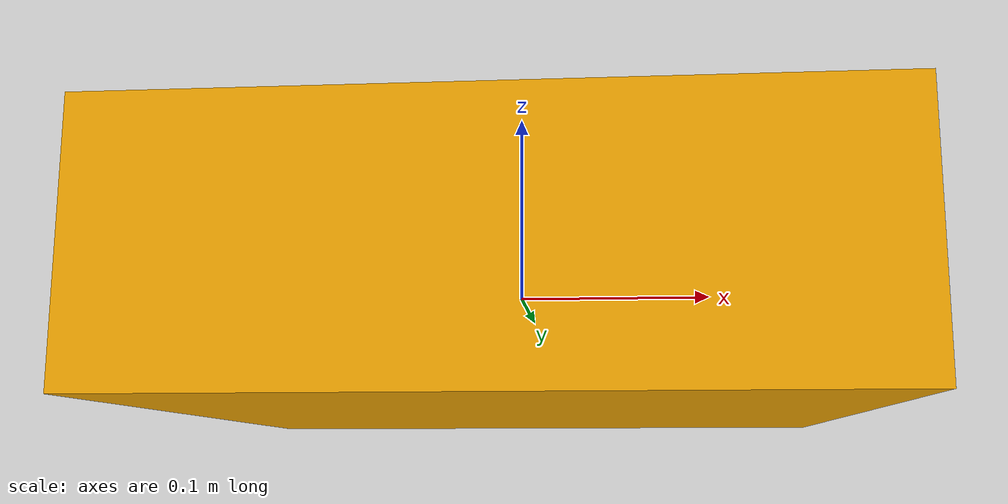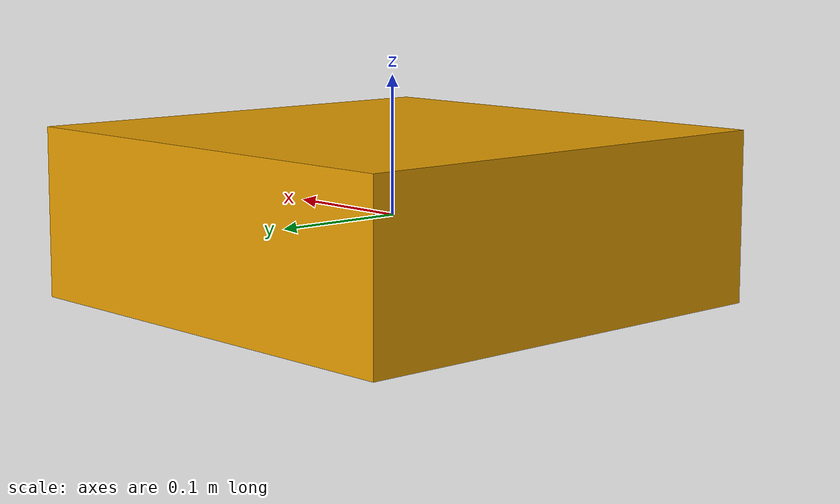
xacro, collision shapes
<?xml version="1.0"?>
<robot name="clover" xmlns:xacro="http://ros.org/wiki/xacro">
  <xacro:property name="body_width" value="0.35" />
  <xacro:property name="body_height" value="0.124" />
  <xacro:property name="mass" value="1.5" />
  <xacro:property name="mass_rotor" value="0.01" />
  <xacro:property name="arm_length_front_x" value="0.083" />
  <xacro:property name="arm_length_back_x" value="0.083" />
  <xacro:property name="arm_length_front_y" value="0.083" />
  <xacro:property name="arm_length_back_y" value="0.083" />
  <xacro:property name="rotor_offset_top" value="0.026" />
  <xacro:property name="radius_rotor" value="0.06" />

  <link name="base_link">
    <inertial>
      <mass value="${mass}" />
      <origin xyz="0 0 0" rpy="0 0 0" />
      <inertia
        ixx="${1 / 12 * mass * (body_width * body_width + body_height * body_height)}"
        ixy="0.0"
        ixz="0.0"
        iyy="${1 / 12 * mass * (body_width * body_width + body_height * body_height)}"
        iyz="0.0"
        izz="${1 / 12 * mass * (body_width * body_width + body_width * body_width)}"
      />
    </inertial>
    <visual>
      <origin xyz="0 0 0.025" rpy="0 0 0" />
      <geometry>
        <mesh filename="package://clover_description/meshes/clover4/clover_body_solid.dae" />
      </geometry>
    </visual>
    <collision>
      <origin xyz="0 0 0" rpy="0 0 0" />
      <geometry>
        <box size="${body_width} ${body_width} ${body_height}" />
      </geometry>
    </collision>
  </link>

  <link name="base_guard_link">
    <inertial>
      <mass value="0.015" />
      <origin xyz="0 0 0" rpy="0 0 0" />
      <inertia ixx="1e-5" ixy="0.0" ixz="0.0" iyy="1e-5" iyz="0.0" izz="1e-5" />
    </inertial>
    <visual>
      <origin xyz="0 0 0.025" rpy="0 0 0" />
      <geometry>
        <mesh filename="package://clover_description/meshes/clover4/clover_guards_transparent.dae" />
      </geometry>
    </visual>
    <collision>
      <origin xyz="0 0 0" rpy="0 0 0" />
      <geometry>
        <box size="0.01 0.01 0.01" />
      </geometry>
    </collision>
  </link>

  <joint name="base_guard_joint" type="fixed">
    <origin xyz="0 0 0" rpy="0 0 0" />
    <parent link="base_link" />
    <child link="base_guard_link" />
  </joint>

  <xacro:macro name="simple_rotor" params="name mesh x y z">
    <link name="${name}">
      <inertial>
        <mass value="${mass_rotor}" />
        <origin xyz="0 0 0" rpy="0 0 0" />
        <inertia ixx="1e-6" ixy="0.0" ixz="0.0" iyy="1e-6" iyz="0.0" izz="1e-6" />
      </inertial>
      <visual>
        <geometry>
          <mesh filename="package://clover_description/meshes/${mesh}" />
        </geometry>
      </visual>
      <collision>
        <geometry>
          <cylinder length="0.005" radius="${radius_rotor}" />
        </geometry>
      </collision>
    </link>
    <joint name="${name}_joint" type="fixed">
      <origin xyz="${x} ${y} ${z}" rpy="0 0 0" />
      <parent link="base_link" />
      <child link="${name}" />
    </joint>
  </xacro:macro>

  <xacro:simple_rotor name="rotor_0" mesh="clover4/prop_ccw.dae" x="${arm_length_front_x}" y="-${arm_length_front_y}" z="${rotor_offset_top}" />
  <xacro:simple_rotor name="rotor_1" mesh="clover4/prop_ccw.dae" x="-${arm_length_back_x}" y="${arm_length_back_y}" z="${rotor_offset_top}" />
  <xacro:simple_rotor name="rotor_2" mesh="clover4/prop_cw.dae" x="${arm_length_front_x}" y="${arm_length_front_y}" z="${rotor_offset_top}" />
  <xacro:simple_rotor name="rotor_3" mesh="clover4/prop_cw.dae" x="-${arm_length_back_x}" y="-${arm_length_back_y}" z="${rotor_offset_top}" />
</robot>
